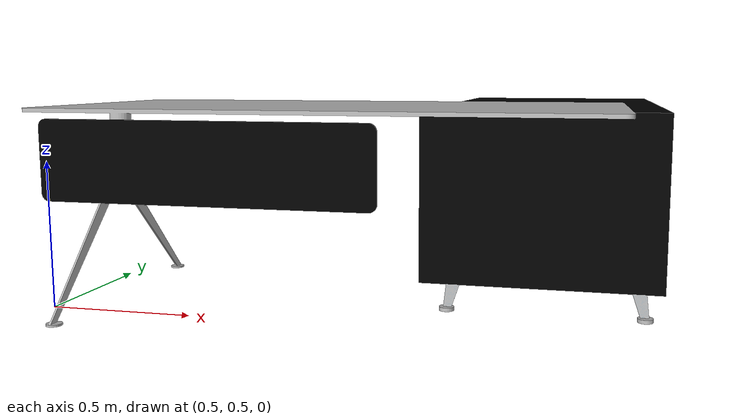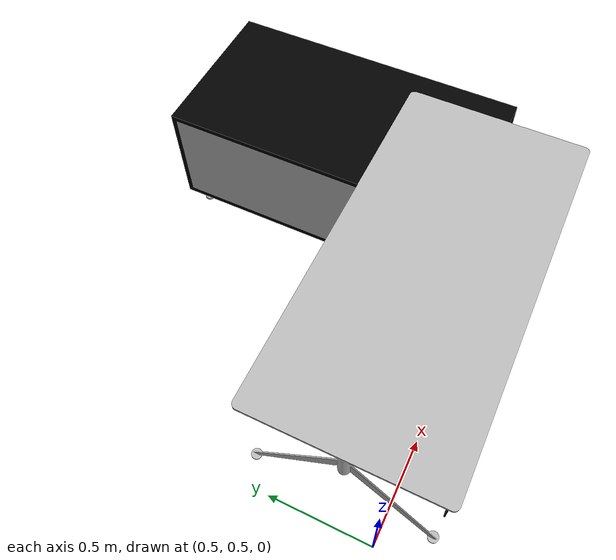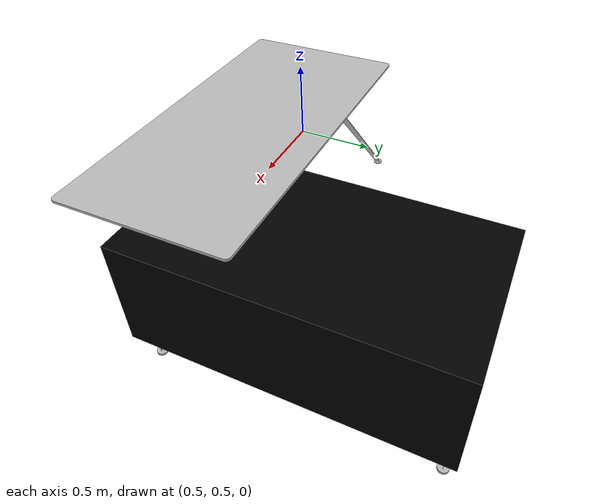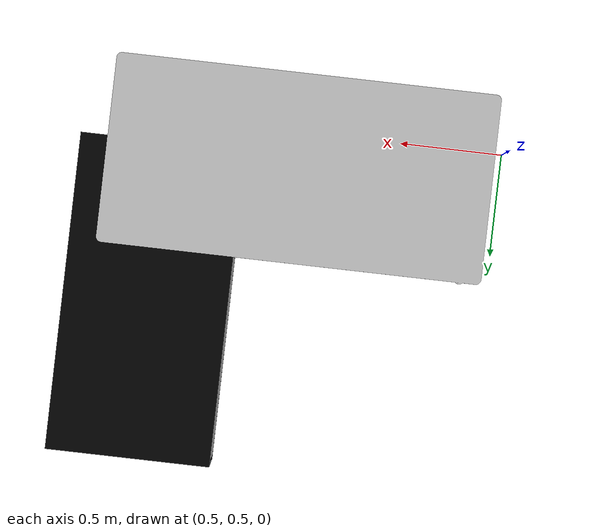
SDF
<?xml version='1.0'?>
<sdf version='1.6'>
  <model name='desk2'>
    <static>true</static>
    <link name="body">
      <visual name="visual">
            <geometry>
                <mesh>
                    <uri>model://desk2/model.dae</uri>
                </mesh>
            </geometry>
        </visual>
        <collision name="collision">
            <geometry>
                <mesh>
                    <uri>model://desk2/model.dae</uri>
                </mesh>
            </geometry>
        </collision>
    </link>
  </model>
</sdf>
